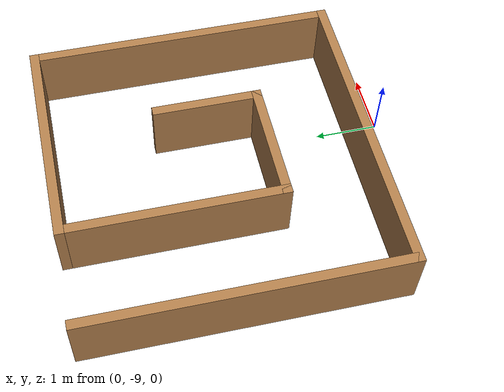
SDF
<?xml version='1.0'?>
<sdf version='1.7'>
  <model name='groupA1_custom.world'>
    <pose>-0.625 -4.2925 0 0 -0 0</pose>
    <link name='Wall_0'>
      <collision name='Wall_0_Collision'>
        <geometry>
          <box>
            <size>5 0.15 1</size>
          </box>
        </geometry>
        <pose>0 0 0.5 0 -0 0</pose>
      </collision>
      <visual name='Wall_0_Visual'>
        <pose>0 0 0.5 0 -0 0</pose>
        <geometry>
          <box>
            <size>5 0.15 1</size>
          </box>
        </geometry>
        <material>
          <script>
            <uri>file://media/materials/scripts/gazebo.material</uri>
            <name>Gazebo/Wood</name>
          </script>
          <ambient>1 1 1 1</ambient>
        </material>
        <meta>
          <layer>0</layer>
        </meta>
      </visual>
      <pose>-2.425 -1.7925 0 0 -0 -1.5708</pose>
    </link>
    <link name='Wall_1'>
      <collision name='Wall_1_Collision'>
        <geometry>
          <box>
            <size>5 0.15 1</size>
          </box>
        </geometry>
        <pose>0 0 0.5 0 -0 0</pose>
      </collision>
      <visual name='Wall_1_Visual'>
        <pose>0 0 0.5 0 -0 0</pose>
        <geometry>
          <box>
            <size>5 0.15 1</size>
          </box>
        </geometry>
        <material>
          <script>
            <uri>file://media/materials/scripts/gazebo.material</uri>
            <name>Gazebo/Wood</name>
          </script>
          <ambient>1 1 1 1</ambient>
        </material>
        <meta>
          <layer>0</layer>
        </meta>
      </visual>
      <pose>0 -4.2175 0 0 -0 0</pose>
    </link>
    <link name='Wall_4'>
      <collision name='Wall_4_Collision'>
        <geometry>
          <box>
            <size>5 0.15 1</size>
          </box>
        </geometry>
        <pose>0 0 0.5 0 -0 0</pose>
      </collision>
      <visual name='Wall_4_Visual'>
        <pose>0 0 0.5 0 -0 0</pose>
        <geometry>
          <box>
            <size>5 0.15 1</size>
          </box>
        </geometry>
        <material>
          <script>
            <uri>file://media/materials/scripts/gazebo.material</uri>
            <name>Gazebo/Wood</name>
          </script>
          <ambient>1 1 1 1</ambient>
        </material>
        <meta>
          <layer>0</layer>
        </meta>
      </visual>
      <pose>2.425 -1.7925 0 0 -0 1.5708</pose>
    </link>
    <link name='Wall_6'>
      <collision name='Wall_6_Collision'>
        <geometry>
          <box>
            <size>3.5 0.15 1</size>
          </box>
        </geometry>
        <pose>0 0 0.5 0 -0 0</pose>
      </collision>
      <visual name='Wall_6_Visual'>
        <pose>0 0 0.5 0 -0 0</pose>
        <geometry>
          <box>
            <size>3.5 0.15 1</size>
          </box>
        </geometry>
        <material>
          <script>
            <uri>file://media/materials/scripts/gazebo.material</uri>
            <name>Gazebo/Wood</name>
          </script>
          <ambient>1 1 1 1</ambient>
        </material>
        <meta>
          <layer>0</layer>
        </meta>
      </visual>
      <pose>0.75 0.6325 0 0 -0 3.14159</pose>
    </link>
    <link name='Wall_7'>
      <collision name='Wall_7_Collision'>
        <geometry>
          <box>
            <size>3.5 0.15 1</size>
          </box>
        </geometry>
        <pose>0 0 0.5 0 -0 0</pose>
      </collision>
      <visual name='Wall_7_Visual'>
        <pose>0 0 0.5 0 -0 0</pose>
        <geometry>
          <box>
            <size>3.5 0.15 1</size>
          </box>
        </geometry>
        <material>
          <script>
            <uri>file://media/materials/scripts/gazebo.material</uri>
            <name>Gazebo/Wood</name>
          </script>
          <ambient>1 1 1 1</ambient>
        </material>
        <meta>
          <layer>0</layer>
        </meta>
      </visual>
      <pose>-0.925 -1.0425 0 0 -0 -1.5708</pose>
    </link>
    <link name='Wall_8'>
      <collision name='Wall_8_Collision'>
        <geometry>
          <box>
            <size>2 0.15 1</size>
          </box>
        </geometry>
        <pose>0 0 0.5 0 -0 0</pose>
      </collision>
      <visual name='Wall_8_Visual'>
        <pose>0 0 0.5 0 -0 0</pose>
        <geometry>
          <box>
            <size>2 0.15 1</size>
          </box>
        </geometry>
        <material>
          <script>
            <uri>file://media/materials/scripts/gazebo.material</uri>
            <name>Gazebo/Wood</name>
          </script>
          <ambient>1 1 1 1</ambient>
        </material>
        <meta>
          <layer>0</layer>
        </meta>
      </visual>
      <pose>0 -2.7175 0 0 -0 0</pose>
    </link>
    <link name='Wall_9'>
      <collision name='Wall_9_Collision'>
        <geometry>
          <box>
            <size>1.75 0.15 1</size>
          </box>
        </geometry>
        <pose>0 0 0.5 0 -0 0</pose>
      </collision>
      <visual name='Wall_9_Visual'>
        <pose>0 0 0.5 0 -0 0</pose>
        <geometry>
          <box>
            <size>1.75 0.15 1</size>
          </box>
        </geometry>
        <material>
          <script>
            <uri>file://media/materials/scripts/gazebo.material</uri>
            <name>Gazebo/Wood</name>
          </script>
          <ambient>1 1 1 1</ambient>
        </material>
        <meta>
          <layer>0</layer>
        </meta>
      </visual>
      <pose>0.925 -1.9175 0 0 -0 1.5708</pose>
    </link>
    <static>1</static>
  </model>
</sdf>
